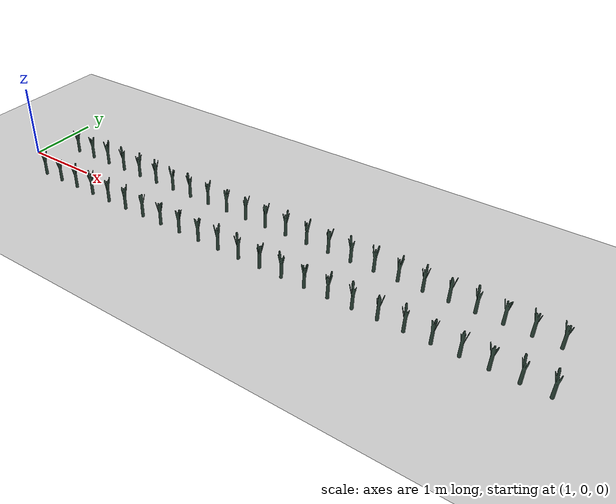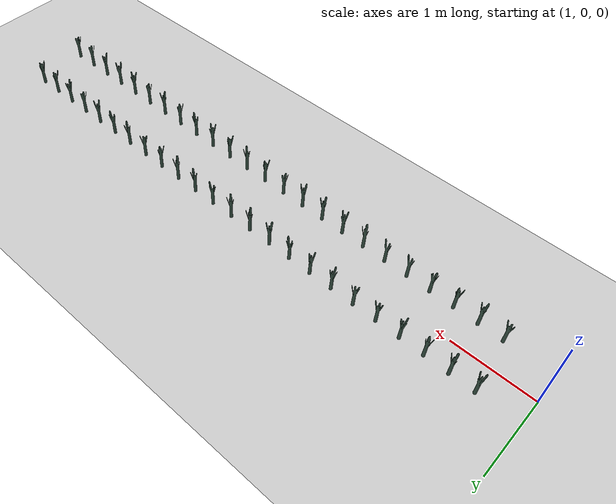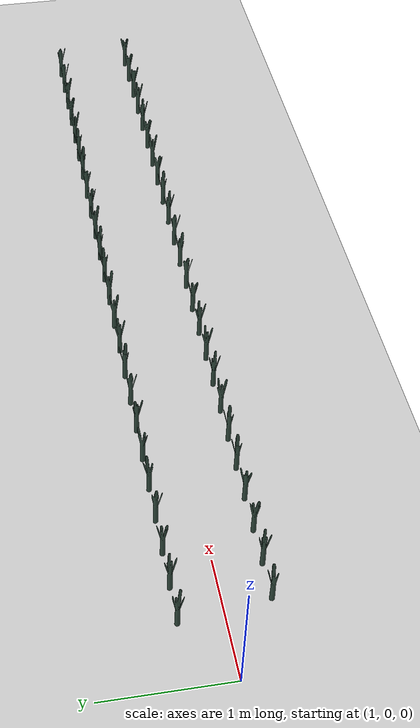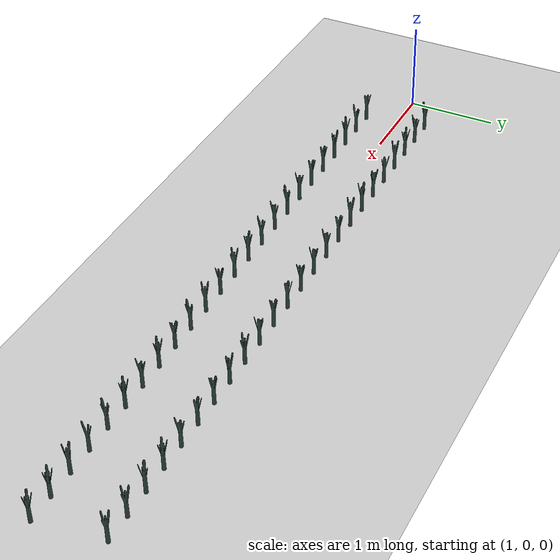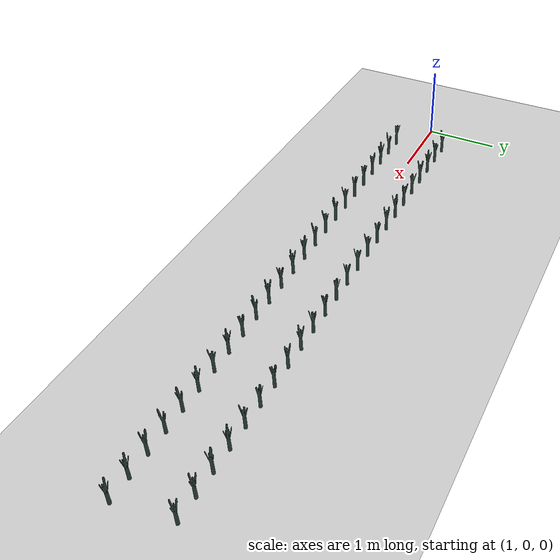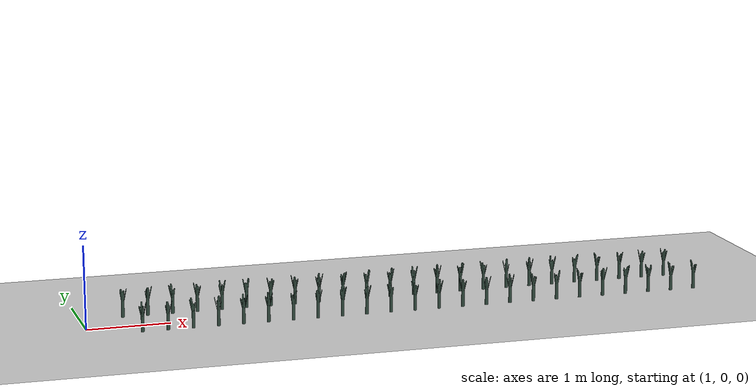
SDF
<sdf version="1.6">
 <world name="default">
  <light name="sun" type="directional">
   <pose>0 0 10 0 -0 0</pose>
   <diffuse>0.5 0.5 0.5 1</diffuse>
   <specular>0.1 0.1 0.1 1</specular>
   <attenuation>
    <range>1000</range>
    <constant>0.9</constant>
    <linear>0.01</linear>
    <quadratic>0.001</quadratic>
   </attenuation>
   <direction>0.9 0.5 -1</direction>
  </light>
  <scene><background>130 200 255 1</background><ambient>130 140 140 1</ambient></scene>
  <include><uri>model://dirt_plane</uri></include>
  <include><uri>model://Leek</uri><pose>1.500000 0.350000 0.15 0 0 110.899529</pose><static>0</static></include>
  <include><uri>model://Leek</uri><pose>1.800000 0.350000 0.15 0 0 36.029355</pose><static>0</static></include>
  <include><uri>model://Leek</uri><pose>2.100000 0.350000 0.15 0 0 -67.337966</pose><static>0</static></include>
  <include><uri>model://Leek</uri><pose>2.400000 0.350000 0.15 0 0 178.625196</pose><static>0</static></include>
  <include>
   <uri>model://Leek</uri>
   <pose>2.700000 0.350000 0.15 0 0 -156.773998</pose>
   <static>0</static>
  </include>
  <include><uri>model://Leek</uri><pose>3.000000 0.350000 0.15 0 0 -11.816810</pose><static>0</static></include>
  <include><uri>model://Leek</uri><pose>3.300000 0.350000 0.15 0 0 28.304768</pose><static>0</static></include>
  <include><uri>model://Leek</uri><pose>3.600000 0.350000 0.15 0 0 172.410223</pose><static>0</static></include>
  <include><uri>model://Leek</uri><pose>3.900000 0.350000 0.15 0 0 -88.258195</pose><static>0</static></include>
  <include><uri>model://Leek</uri><pose>4.200000 0.350000 0.15 0 0 -32.863197</pose><static>0</static></include>
  <include><uri>model://Leek</uri><pose>4.500000 0.350000 0.15 0 0 -51.231019</pose><static>0</static></include>
  <include><uri>model://Leek</uri><pose>4.800000 0.350000 0.15 0 0 118.646816</pose><static>0</static></include>
  <include>
   <uri>model://Leek</uri>
   <pose>5.100000 0.350000 0.15 0 0 -106.748930</pose>
   <static>0</static>
  </include>
  <include><uri>model://Leek</uri><pose>5.400000 0.350000 0.15 0 0 112.724788</pose><static>0</static></include>
  <include><uri>model://Leek</uri><pose>5.700000 0.350000 0.15 0 0 105.953337</pose><static>0</static></include>
  <include><uri>model://Leek</uri><pose>6.000000 0.350000 0.15 0 0 -72.949656</pose><static>0</static></include>
  <include><uri>model://Leek</uri><pose>6.300000 0.350000 0.15 0 0 -99.370048</pose><static>0</static></include>
  <include>
   <uri>model://Leek</uri>
   <pose>6.600000 0.350000 0.15 0 0 -119.748854</pose>
   <static>0</static>
  </include>
  <include><uri>model://Leek</uri><pose>6.900000 0.350000 0.15 0 0 138.270069</pose><static>0</static></include>
  <include>
   <uri>model://Leek</uri>
   <pose>7.200000 0.350000 0.15 0 0 -108.086924</pose>
   <static>0</static>
  </include>
  <include><uri>model://Leek</uri><pose>7.500000 0.350000 0.15 0 0 134.092250</pose><static>0</static></include>
  <include>
   <uri>model://Leek</uri>
   <pose>7.800000 0.350000 0.15 0 0 -140.903185</pose>
   <static>0</static>
  </include>
  <include><uri>model://Leek</uri><pose>8.100000 0.350000 0.15 0 0 -53.727908</pose><static>0</static></include>
  <include><uri>model://Leek</uri><pose>8.400000 0.350000 0.15 0 0 28.042257</pose><static>0</static></include>
  <include>
   <uri>model://Leek</uri>
   <pose>1.596851 -0.350000 0.15 0 0 -100.617271</pose>
   <static>0</static>
  </include>
  <include>
   <uri>model://Leek</uri>
   <pose>1.896851 -0.350000 0.15 0 0 -121.267720</pose>
   <static>0</static>
  </include>
  <include><uri>model://Leek</uri><pose>2.196851 -0.350000 0.15 0 0 33.367335</pose><static>0</static></include>
  <include>
   <uri>model://Leek</uri>
   <pose>2.496851 -0.350000 0.15 0 0 108.022901</pose>
   <static>0</static>
  </include>
  <include>
   <uri>model://Leek</uri>
   <pose>2.796851 -0.350000 0.15 0 0 125.512277</pose>
   <static>0</static>
  </include>
  <include><uri>model://Leek</uri><pose>3.096851 -0.350000 0.15 0 0 68.908092</pose><static>0</static></include>
  <include><uri>model://Leek</uri><pose>3.396851 -0.350000 0.15 0 0 86.799275</pose><static>0</static></include>
  <include>
   <uri>model://Leek</uri>
   <pose>3.696851 -0.350000 0.15 0 0 -140.270770</pose>
   <static>0</static>
  </include>
  <include>
   <uri>model://Leek</uri>
   <pose>3.996851 -0.350000 0.15 0 0 -158.532639</pose>
   <static>0</static>
  </include>
  <include>
   <uri>model://Leek</uri>
   <pose>4.296851 -0.350000 0.15 0 0 -133.574099</pose>
   <static>0</static>
  </include>
  <include>
   <uri>model://Leek</uri>
   <pose>4.596851 -0.350000 0.15 0 0 -174.236844</pose>
   <static>0</static>
  </include>
  <include>
   <uri>model://Leek</uri>
   <pose>4.896851 -0.350000 0.15 0 0 -104.298640</pose>
   <static>0</static>
  </include>
  <include>
   <uri>model://Leek</uri>
   <pose>5.196851 -0.350000 0.15 0 0 -157.674285</pose>
   <static>0</static>
  </include>
  <include>
   <uri>model://Leek</uri>
   <pose>5.496851 -0.350000 0.15 0 0 103.292543</pose>
   <static>0</static>
  </include>
  <include>
   <uri>model://Leek</uri>
   <pose>5.796851 -0.350000 0.15 0 0 -39.664422</pose>
   <static>0</static>
  </include>
  <include>
   <uri>model://Leek</uri>
   <pose>6.096851 -0.350000 0.15 0 0 -163.603353</pose>
   <static>0</static>
  </include>
  <include>
   <uri>model://Leek</uri>
   <pose>6.396851 -0.350000 0.15 0 0 -35.439599</pose>
   <static>0</static>
  </include>
  <include>
   <uri>model://Leek</uri>
   <pose>6.696851 -0.350000 0.15 0 0 -133.102471</pose>
   <static>0</static>
  </include>
  <include><uri>model://Leek</uri><pose>6.996851 -0.350000 0.15 0 0 8.426429</pose><static>0</static></include>
  <include><uri>model://Leek</uri><pose>7.296851 -0.350000 0.15 0 0 10.729652</pose><static>0</static></include>
  <include>
   <uri>model://Leek</uri>
   <pose>7.596851 -0.350000 0.15 0 0 111.624501</pose>
   <static>0</static>
  </include>
  <include><uri>model://Leek</uri><pose>7.896851 -0.350000 0.15 0 0 22.131673</pose><static>0</static></include>
  <include><uri>model://Leek</uri><pose>8.196851 -0.350000 0.15 0 0 46.137409</pose><static>0</static></include>
  <include><uri>model://Leek</uri><pose>8.496851 -0.350000 0.15 0 0 8.348478</pose><static>0</static></include>
 </world>
</sdf>

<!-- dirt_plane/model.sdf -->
<sdf version="1.4">
<model name="dirt_plane">
  <static>true</static>
    <link name="link">
      <collision name="collision">
        <geometry>
          <plane>
            <normal>0 0 1</normal>
            <size>100 100</size>
          </plane>
        </geometry>
        <surface>
          <friction>
            <ode>
              <mu>0.99</mu>
              <mu2>0.99</mu2>
            </ode>
          </friction>
        </surface>
      </collision>
      <visual name="visual">
        <cast_shadows>false</cast_shadows>
        <geometry>
          <plane>
            <normal>0 0 1</normal>
            <size>100 100</size>
          </plane>
        </geometry>
        <material>
          <script>
            <uri>model://ground_plane/materials/scripts/my_ground_plane.material</uri>
            <uri>model://ground_plane/materials/textures</uri>
            <name>my_ground_plane/Dirt</name>
          </script>
        </material>
      </visual>
    </link>
  </model>
</sdf>

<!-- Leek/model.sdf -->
<sdf version='1.6'>
  <model name='Leek'>
    <link name='link'>
      <pose frame=''>0 0 0 0 -0 0</pose>
      <inertial>
        <mass>1</mass>
        <inertia>
          <ixx>0.145833</ixx>
          <ixy>0</ixy>
          <ixz>0</ixz>
          <iyy>0.145833</iyy>
          <iyz>0</iyz>
          <izz>0.125</izz>
        </inertia>
        <pose frame=''>0 0 0 0 -0 0</pose>
      </inertial>
      <self_collide>0</self_collide>
      <kinematic>0</kinematic>
      <gravity>1</gravity>
      <visual name='visual'>
        <geometry>
          <mesh>
            <uri>model://Leek/Poireau.dae</uri>
            <scale>1 1 1</scale>
          </mesh>
        </geometry>
        <material>
          <script>
            <name>Gazebo/Grey</name>
            <uri>file://media/materials/scripts/gazebo.material</uri>
          </script>
          <ambient>0.3 0.6 0.5 0</ambient>
          <diffuse>0.2 0.3 0.25 0</diffuse>
          <specular>0 0 0 1</specular>
          <emissive>0 0 0 1</emissive>
          <shader type='vertex'>
            <normal_map>__default__</normal_map>
          </shader>
        </material>
        <pose frame=''>0 0 -0.08 0 -0 0</pose>
        <cast_shadows>1</cast_shadows>
        <transparency>0</transparency>
      </visual>
      <collision name='collision'>
        <laser_retro>0</laser_retro>
        <max_contacts>10</max_contacts>
        <pose frame=''>0 0 0 0 -0 0</pose>
        <geometry>
          <cylinder>
            <radius>0.02</radius>
            <length>0.25</length>
          </cylinder>
        </geometry>
        <surface>
          <friction>
            <ode>
              <mu>1</mu>
              <mu2>1</mu2>
              <fdir1>0 0 0</fdir1>
              <slip1>0</slip1>
              <slip2>0</slip2>
            </ode>
            <torsional>
              <coefficient>1</coefficient>
              <patch_radius>0</patch_radius>
              <surface_radius>0</surface_radius>
              <use_patch_radius>1</use_patch_radius>
              <ode>
                <slip>0</slip>
              </ode>
            </torsional>
          </friction>
          <bounce>
            <restitution_coefficient>0</restitution_coefficient>
            <threshold>1e+06</threshold>
          </bounce>
          <contact>
            <collide_without_contact>0</collide_without_contact>
            <collide_without_contact_bitmask>1</collide_without_contact_bitmask>
            <collide_bitmask>1</collide_bitmask>
            <ode>
              <soft_cfm>0</soft_cfm>
              <soft_erp>0.2</soft_erp>
              <kp>1e+13</kp>
              <kd>1</kd>
              <max_vel>0.01</max_vel>
              <min_depth>0</min_depth>
            </ode>
            <bullet>
              <split_impulse>1</split_impulse>
              <split_impulse_penetration_threshold>-0.01</split_impulse_penetration_threshold>
              <soft_cfm>0</soft_cfm>
              <soft_erp>0.2</soft_erp>
              <kp>1e+13</kp>
              <kd>1</kd>
            </bullet>
          </contact>
        </surface>
      </collision>
    </link>
    <static>0</static>
    <allow_auto_disable>1</allow_auto_disable>
  </model>
</sdf>
